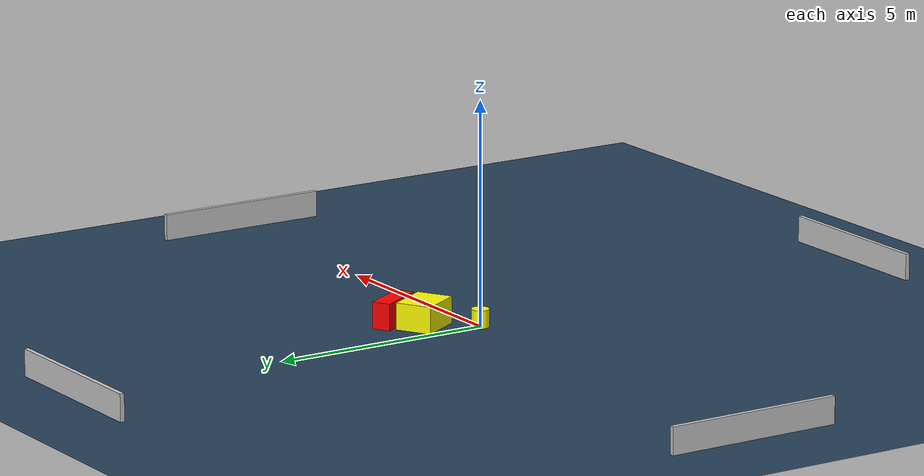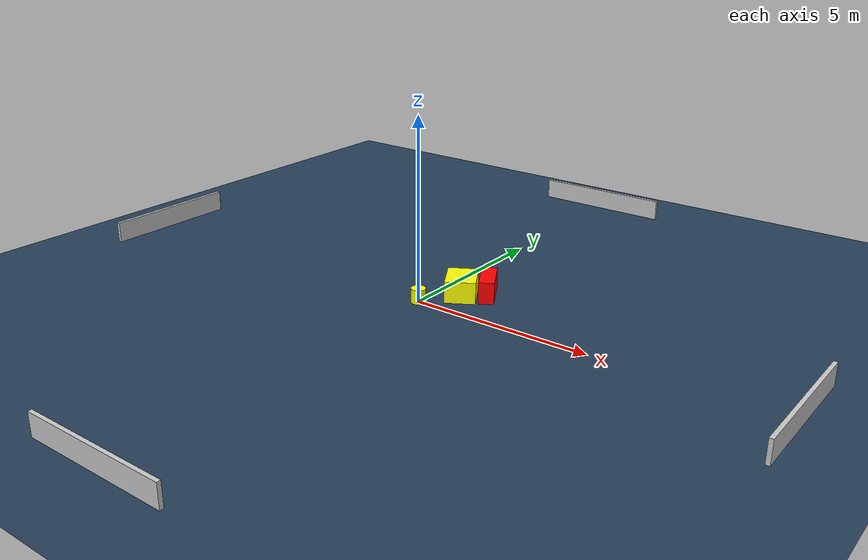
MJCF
<?xml version="1.0" ?>
<mujoco model="generated_environment">
  <option timestep="0.01" integrator="RK4" cone="elliptic"/>
  <default>
    <geom density="1"/>
  </default>
  <asset>
    <texture builtin="gradient" height="3072" name="skybox" rgb1="0.3 0.5 0.7" rgb2="0 0 0" type="skybox" width="512"/>
    <texture builtin="checker" height="300" name="groundplane" rgb1="0.2 0.3 0.4" rgb2="0.1 0.2 0.3" type="2d" width="300"/>
    <material name="groundplane" reflectance="0.2" texrepeat="5 5" texture="groundplane"/>
  </asset>
  <worldbody>
    <light dir="0 0 -1" directional="true" pos="0 0 1.5"/>
    <geom condim="3" friction="0.5 0.005 0.001" material="groundplane" name="floor" pos="0 0 0" size="0 0 0.05" type="plane"/>
    <body name="walls">
      <geom name="wall_1" condim="4" pos="-10.0 0.0 0.3" rgba="0.800000011920929 0.800000011920929 0.800000011920929 1.0" size="0.05 2.0 0.3" type="box"/>
      <geom name="wall_2" condim="4" pos="10.0 0.0 0.3" rgba="0.800000011920929 0.800000011920929 0.800000011920929 1.0" size="0.05 2.0 0.3" type="box"/>
      <geom name="wall_3" condim="4" pos="0.0 -10.0 0.3" rgba="0.800000011920929 0.800000011920929 0.800000011920929 1.0" size="2.0 0.05 0.3" type="box"/>
      <geom name="wall_4" condim="4" pos="0.0 10.0 0.3" rgba="0.800000011920929 0.800000011920929 0.800000011920929 1.0" size="2.0 0.05 0.3" type="box"/>
    </body>
    <body name="robot">
      <joint name="joint_x" type="slide" pos="0 0 0" axis="1 0 0"/>
      <joint name="joint_y" type="slide" pos="0 0 0" axis="0 1 0"/>
      <geom name="robot" type="cylinder" pos="0.0 0.0 0.2" size="0.2 0.2 0.0" mass="5.0" friction="1.0 0.005 0.0001" condim="4" rgba="1.0 1.0 0.0 1.0"/>
    </body>
    <body name="obstacle_1_movable">
      <geom name="obstacle_1_movable" condim="4" pos="0.671438555761142 1.0053709422143966 0.3" euler="0 0 120.18248207427666" friction="0.0 0.005 0.001" rgba="1.0 1.0 0.0 1.0" size="0.5101973076222106 0.4117965176634068 0.3" type="box" mass="0.1"/>
      <joint type="free"/>
    </body>
    <body name="obstacle_2_static">
      <geom name="obstacle_2_static" condim="4" pos="1.216399781162793 1.4459926785414958 0.3" euler="0 0 119.41967234250843" friction="0.0 0.005 0.001" rgba="1.0 0.0 0.0 1.0" size="0.5626545226645432 0.20822823221501677 0.3" type="box"/>
    </body>
  </worldbody>
  <actuator>
    <motor name="actuator_x" joint="joint_x" gear="1" ctrlrange="-1 1"/>
    <motor name="actuator_y" joint="joint_y" gear="1" ctrlrange="-1 1"/>
  </actuator>
</mujoco>
